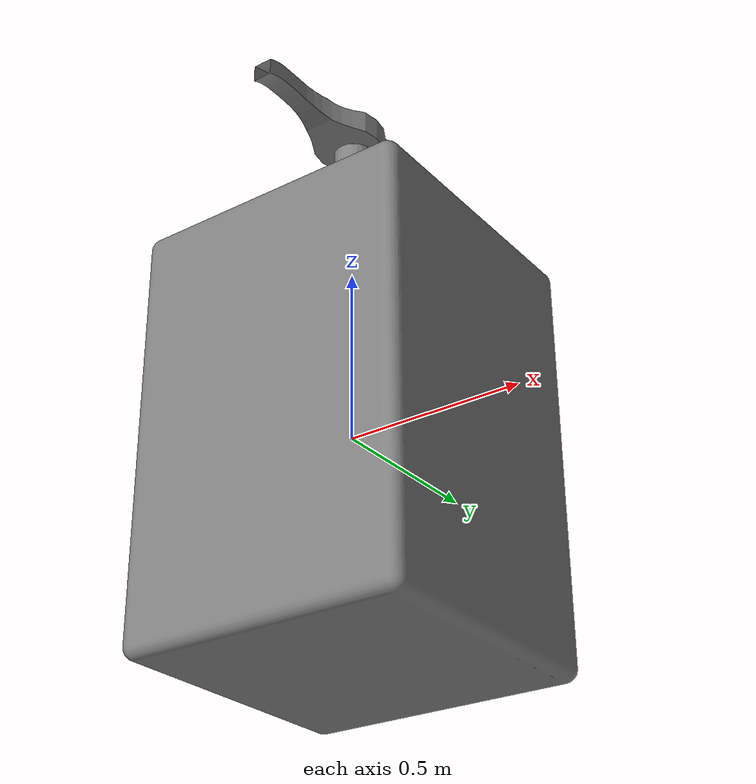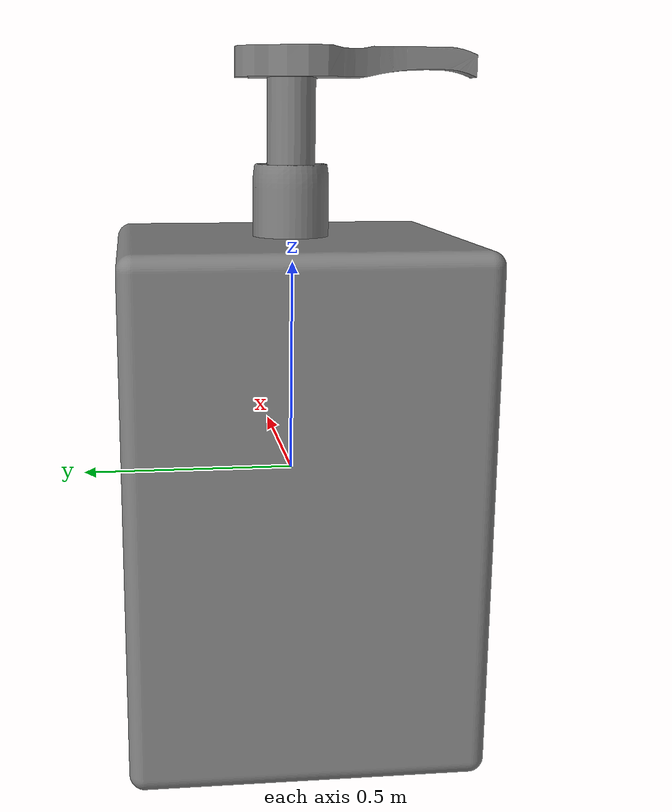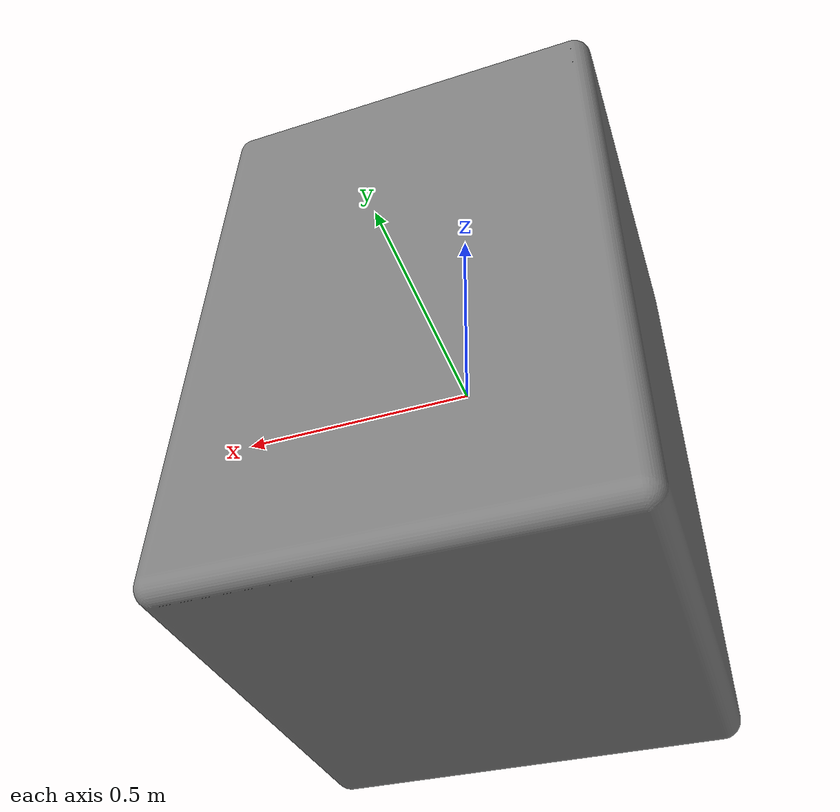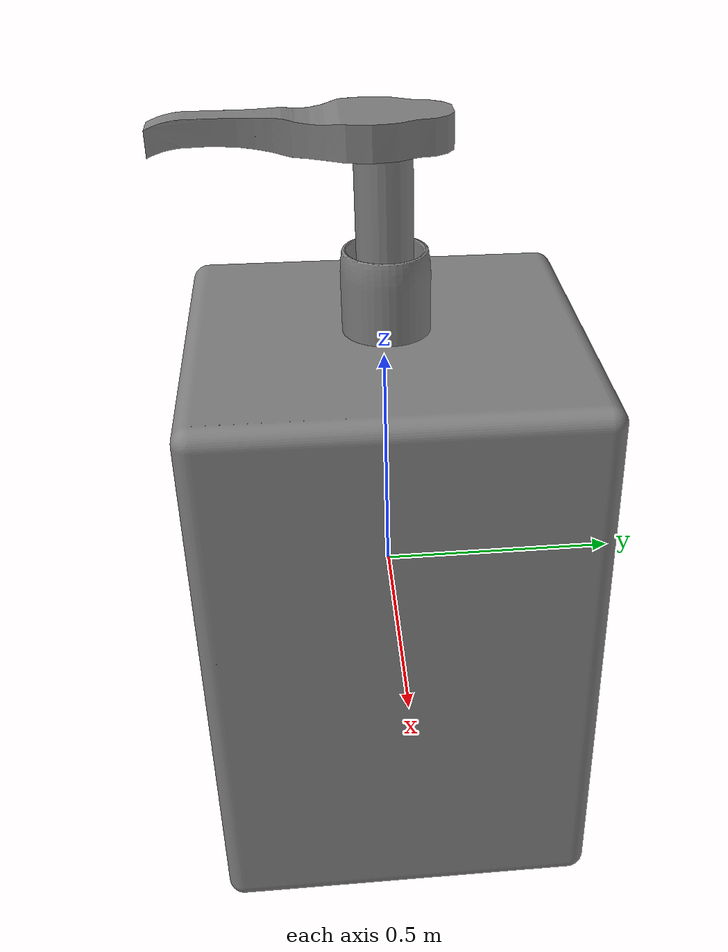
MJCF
<?xml version='1.0' encoding='UTF-8'?>
<mujoco model="partnet_b86e51b2-8659-4c4f-bfba-b1021d7831bb-0">
  <compiler angle="radian"/>
  <asset>
    <mesh name="original_6" content_type="model/obj" file="textured_objs/original_6.obj"/>
    <mesh name="original_7" content_type="model/obj" file="textured_objs/original_7.obj"/>
    <mesh name="original_2" content_type="model/obj" file="textured_objs/original_2.obj"/>
    <mesh name="original_3" content_type="model/obj" file="textured_objs/original_3.obj"/>
    <mesh name="original_4" content_type="model/obj" file="textured_objs/original_4.obj"/>
  </asset>
  <worldbody>
    <body name="base">
      <body name="link_2" quat="0.5 0.5 -0.5 -0.5">
        <geom type="mesh" mesh="original_4"/>
        <body name="link_1_helper" pos="-0.0050385 0 -0.004002">
          <inertial pos="0 0 0" mass="1e-06" diaginertia="1e-10 1e-10 1e-10"/>
          <joint name="joint_4" pos="0 0 0" axis="0 1 0" type="slide" range="0 0.192"/>
          <body name="link_1">
            <joint name="joint_1" pos="0 0 0" axis="0 1 0"/>
            <geom pos="0.0050385 0 0.004002" quat="1 0 0 0" type="mesh" mesh="original_2"/>
            <geom pos="0.0050385 0 0.004002" quat="1 0 0 0" type="mesh" mesh="original_3"/>
            <body name="link_0_helper">
              <inertial pos="0 0 0" mass="1e-06" diaginertia="1e-10 1e-10 1e-10"/>
              <joint name="joint_3" pos="0 0 0" axis="0 -1 0" type="slide" range="0 0.2"/>
              <body name="link_0">
                <joint name="joint_0" pos="0 0 0" axis="0 1 0"/>
                <geom pos="0.0050385 0 0.004002" quat="1 0 0 0" type="mesh" mesh="original_6"/>
                <geom pos="0.0050385 0 0.004002" quat="1 0 0 0" type="mesh" mesh="original_7"/>
              </body>
            </body>
          </body>
        </body>
      </body>
    </body>
  </worldbody>
</mujoco>
